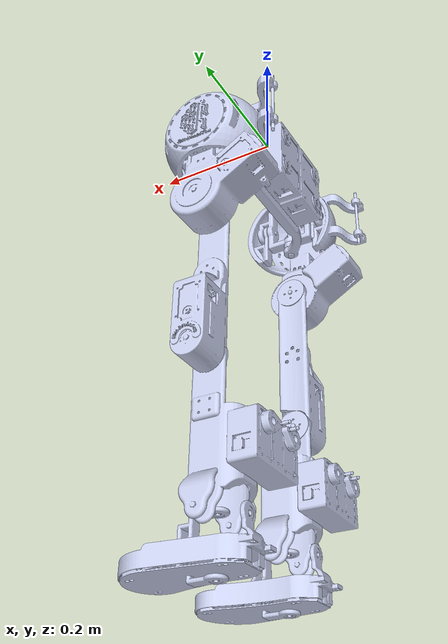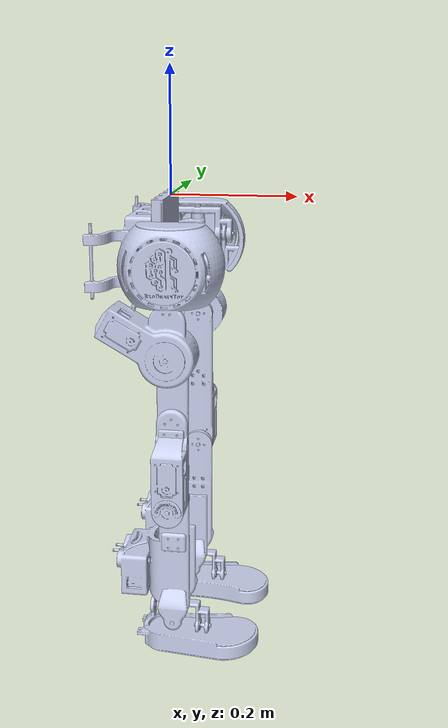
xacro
<?xml version="1.0"?>
<!-- Revolute-Revolute Manipulator -->
<robot name="thormang3" xmlns:xacro="http://www.ros.org/wiki/xacro">

  <!-- some parameters -->
  <xacro:property name="pi" value="3.141592654" />

  <!-- Import all Gazebo-customization elements, including Gazebo colors -->

  <!-- Import Rviz colors -->
  <xacro:include filename="$(find thormang3_description)/urdf/materials.xacro" />
  <xacro:include filename="$(find thormang3_description)/urdf/thormang3.transmissions.xacro" />
  <xacro:include filename="$(find thormang3_description)/urdf/thormang3.structure.leg.xacro" />
  <xacro:include filename="$(find thormang3_description)/urdf/thormang3.gazebo" />
  <!-- Used for fixing robot -->
  <!-- pelvis_link -->
<link
    name="pelvis_link">
    <inertial>
      <origin
        xyz="-0.0229570391634383 9.79841631490452E-06 -0.0791579286364339"
        rpy="0 0 0" />
      <mass
        value="0.876180506785054" />
      <inertia
        ixx="1.0"
        ixy="0.0"
        ixz="0.0"
        iyy="1.0"
        iyz="0.0"
        izz="1.0" />
    </inertial>
    <visual>
      <origin
        xyz="0 0 0"
        rpy="0 0 0" />
      <geometry>
        <mesh
          filename="package://exo_fri2/meshes/pelvis_link.STL" />
      </geometry>
      <material
        name="">
        <color
          rgba="0.792156862745098 0.819607843137255 0.933333333333333 1" />
      </material>
    </visual>
    <collision>
      <origin
        xyz="0 0 0"
        rpy="0 0 0" />
      <geometry>
        <mesh
          filename="package://exo_fri2/meshes/pelvis_link.STL" />
      </geometry>
    </collision>
  </link>

  <!-- imu joint -->
  <joint name="imu_fixed" type="fixed">
    <parent link="pelvis_link"/>
    <child link="imu_link"/>
    <origin xyz="0.03 0 0.0" rpy="0 0 ${pi}"/>
  </joint>

  <link name="imu_link">
  </link>
  <xacro:thormang3_l_leg parent="pelvis_link" />
  <xacro:thormang3_r_leg parent="pelvis_link" />
</robot>

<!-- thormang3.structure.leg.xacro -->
<robot xmlns:xacro="http://ros.org/wiki/xacro">

    <xacro:property name="pi" value="3.141592654" />

    <xacro:macro name="thormang3_l_leg" params="parent">

	<!-- left hip yaw joint -->
  <link
    name="l_leg_hip_y_link">
    <inertial>
      <origin
        xyz="0.000194866698194046 3.98997327107631E-05 0.00285846754175562"
        rpy="0 0 0" />
      <mass
        value="0.0865282088524624" />
      <inertia
        ixx="1.0"
        ixy="0.0"
        ixz="0.0"
        iyy="1.0"
        iyz="0.0"
        izz="1.0" />
    </inertial>
    <visual>
      <origin
        xyz="0 0 0"
        rpy="0 0 0" />
      <geometry>
        <mesh
          filename="package://exo_fri2/meshes/l_leg_hip_y_link.STL" />
      </geometry>
      <material
        name="">
        <color
          rgba="0.792156862745098 0.819607843137255 0.933333333333333 1" />
      </material>
    </visual>
    <collision>
      <origin
        xyz="0 0 0"
        rpy="0 0 0" />
      <geometry>
        <mesh
          filename="package://exo_fri2/meshes/l_leg_hip_y_link.STL" />
      </geometry>
    </collision>
  </link>
  <joint
    name="l_leg_hip_y"
    type="revolute">
    <origin
      xyz="0.023 0.125 -0.0813"
      rpy="0 0 0" />
    <parent
      link="pelvis_link" />
    <child
      link="l_leg_hip_y_link" />
    <axis
      xyz="0 0 1" />
    <limit
      velocity="6.5"
      effort="1000"
      lower="-2.826"
      upper="2.826" />
    <dynamics
      damping="0.1"
      friction="0.0" />
  </joint>
<xacro:insert_transmission name="l_leg_hip_y" />
  <link
    name="l_leg_hip_r_link">
    <inertial>
      <origin
        xyz="-0.0228672177413694 0.0267340296554695 -0.057861572875431"
        rpy="0 0 0" />
      <mass
        value="0.577322605082582" />
      <inertia
        ixx="1.0"
        ixy="0.0"
        ixz="0.0"
        iyy="1.0"
        iyz="0.0"
        izz="1.0" />
    </inertial>
    <visual>
      <origin
        xyz="0 0 0"
        rpy="0 0 0" />
      <geometry>
        <mesh
          filename="package://exo_fri2/meshes/l_leg_hip_r_link.STL" />
      </geometry>
      <material
        name="">
        <color
          rgba="0.792156862745098 0.819607843137255 0.933333333333333 1" />
      </material>
    </visual>
    <collision>
      <origin
        xyz="0 0 0"
        rpy="0 0 0" />
      <geometry>
        <mesh
          filename="package://exo_fri2/meshes/l_leg_hip_r_link.STL" />
      </geometry>
    </collision>
  </link>
  <joint
    name="l_leg_hip_r"
    type="revolute">
    <origin
      xyz="0 0 0"
      rpy="0 0 0" />
    <parent
      link="l_leg_hip_y_link" />
    <child
      link="l_leg_hip_r_link" />
    <axis
      xyz="1 0 0" />
    <limit
      velocity="6.5"
      effort="1000"
      lower="-2.826"
      upper="2.826" />
    <dynamics
      damping="0.1"
      friction="0.0" />
  </joint>
<xacro:insert_transmission name="l_leg_hip_r" />
  <link
    name="l_leg_hip_p_link">
    <inertial>
      <origin
        xyz="-0.000116198463840173 0.0284688740026196 -0.159183589997654"
        rpy="0 0 0" />
      <mass
        value="0.286678540994592" />
      <inertia
        ixx="1.0"
        ixy="0.0"
        ixz="0.0"
        iyy="1.0"
        iyz="0.0"
        izz="1.0" />
    </inertial>
    <visual>
      <origin
        xyz="0 0 0"
        rpy="0 0 0" />
      <geometry>
        <mesh
          filename="package://exo_fri2/meshes/l_leg_hip_p_link.STL" />
      </geometry>
      <material
        name="">
        <color
          rgba="0.792156862745098 0.819607843137255 0.933333333333333 1" />
      </material>
    </visual>
    <collision>
      <origin
        xyz="0 0 0"
        rpy="0 0 0" />
      <geometry>
        <mesh
          filename="package://exo_fri2/meshes/l_leg_hip_p_link.STL" />
      </geometry>
    </collision>
  </link>
  <joint
    name="l_leg_hip_p"
    type="revolute">
    <origin
      xyz="0.000765 -0.0097362 -0.14104"
      rpy="0 0 0" />
    <parent
      link="l_leg_hip_r_link" />
    <child
      link="l_leg_hip_p_link" />
    <axis
      xyz="0 1 0" />
    <limit
      velocity="6.5"
      effort="1000"
      lower="-2.826"
      upper="2.826" />
    <dynamics
      damping="0.1"
      friction="0.0" />
  </joint>
<xacro:insert_transmission name="l_leg_hip_p" />
  <link
    name="l_leg_kn_p_link">
    <inertial>
      <origin
        xyz="-0.0348628624504665 -0.0190683597425377 -0.127805036988548"
        rpy="0 0 0" />
      <mass
        value="0.501847265279983" />
      <inertia
        ixx="1.0"
        ixy="0.0"
        ixz="0.0"
        iyy="1.0"
        iyz="0.0"
        izz="1.0" />
    </inertial>
    <visual>
      <origin
        xyz="0 0 0"
        rpy="0 0 0" />
      <geometry>
        <mesh
          filename="package://exo_fri2/meshes/l_leg_kn_p_link.STL" />
      </geometry>
      <material
        name="">
        <color
          rgba="0.792156862745098 0.819607843137255 0.933333333333333 1" />
      </material>
    </visual>
    <collision>
      <origin
        xyz="0 0 0"
        rpy="0 0 0" />
      <geometry>
        <mesh
          filename="package://exo_fri2/meshes/l_leg_kn_p_link.STL" />
      </geometry>
    </collision>
  </link>
  <joint
    name="l_leg_kn_p"
    type="revolute">
    <origin
      xyz="0 -0.00025 -0.2451"
      rpy="0 0 0" />
    <parent
      link="l_leg_hip_p_link" />
    <child
      link="l_leg_kn_p_link" />
    <axis
      xyz="0 1 0" />
    <limit
      velocity="6.5"
      effort="1000"
      lower="-2.826"
      upper="2.826" />
    <dynamics
      damping="0.1"
      friction="0.0" />
  </joint>
<xacro:insert_transmission name="l_leg_kn_p" />
  <link
    name="l_leg_an_p_link">
    <inertial>
      <origin
        xyz="-0.0299520881007188 2.09226775349514E-08 3.0086740876456E-09"
        rpy="0 0 0" />
      <mass
        value="0.0325752774497041" />
      <inertia
        ixx="1.0"
        ixy="0.0"
        ixz="0.0"
        iyy="1.0"
        iyz="0.0"
        izz="1.0" />
    </inertial>
    <visual>
      <origin
        xyz="0 0 0"
        rpy="0 0 0" />
      <geometry>
        <mesh
          filename="package://exo_fri2/meshes/l_leg_an_p_link.STL" />
      </geometry>
      <material
        name="">
        <color
          rgba="0.792156862745098 0.819607843137255 0.933333333333333 1" />
      </material>
    </visual>
    <collision>
      <origin
        xyz="0 0 0"
        rpy="0 0 0" />
      <geometry>
        <mesh
          filename="package://exo_fri2/meshes/l_leg_an_p_link.STL" />
      </geometry>
    </collision>
  </link>
  <joint
    name="l_leg_an_p"
    type="revolute">
    <origin
      xyz="0 -0.022 -0.21"
      rpy="0 0 0" />
    <parent
      link="l_leg_kn_p_link" />
    <child
      link="l_leg_an_p_link" />
    <axis
      xyz="0 1 0" />
    <limit
      velocity="6.5"
      effort="1000"
      lower="-2.826"
      upper="2.826" />
    <dynamics
      damping="0.1"
      friction="0.0" />
  </joint>
<xacro:insert_transmission name="l_leg_an_p" />
  <link
    name="l_leg_an_r_link">
    <inertial>
      <origin
        xyz="0.0362143728561817 0.00041776190047349 -0.0460605874777161"
        rpy="0 0 0" />
      <mass
        value="0.20447635642258" />
      <inertia
        ixx="1.0"
        ixy="0.0"
        ixz="0.0"
        iyy="1.0"
        iyz="0.0"
        izz="1.0" />
    </inertial>
    <visual>
      <origin
        xyz="0 0 0"
        rpy="0 0 0" />
      <geometry>
        <mesh
          filename="package://exo_fri2/meshes/l_leg_an_r_link.STL" />
      </geometry>
      <material
        name="">
        <color
          rgba="0.792156862745098 0.819607843137255 0.933333333333333 1" />
      </material>
    </visual>
    <collision>
      <origin
        xyz="0 0 0"
        rpy="0 0 0" />
      <geometry>
        <mesh
          filename="package://exo_fri2/meshes/l_leg_an_r_link.STL" />
      </geometry>
    </collision>
  </link>
  <joint
    name="l_leg_an_r"
    type="revolute">
    <origin
      xyz="0 0 0"
      rpy="0 0 0" />
    <parent
      link="l_leg_an_p_link" />
    <child
      link="l_leg_an_r_link" />
    <axis
      xyz="1 0 0" />
    <limit
      velocity="6.5"
      effort="1000"
      lower="-2.826"
      upper="2.826" />
    <dynamics
      damping="0.1"
      friction="0.0" />
  </joint>
<xacro:insert_transmission name="l_leg_an_r" />

	<!-- left ft joint -->
        <joint name="l_leg_ft" type="revolute">
          <origin xyz="-0.057 0.0 -0.087" rpy="0 0 0"/>
          <parent link="l_leg_an_r_link"/>
          <child link="l_leg_foot_link"/>
		  <limit velocity="6.5" effort="1000" lower="0" upper="0" />
        </joint>

	<!-- left foot link -->
        <link name="l_leg_foot_link">
          <inertial>
      	    <origin xyz="0.000 0.009 -0.013" rpy="0 0 0"/>
      	    <mass value="1.689"/>
      	    <inertia ixx="1.0" ixy="0.0" ixz="0.0" iyy="1.0" iyz="0.0" izz="1.0" />
    	  </inertial>
        </link>

	<!-- left ft fixed joint -->
        <joint name="l_leg_ft_fixed" type="fixed">
          <origin xyz="0.0 0.0 0.0" rpy="${pi} 0 0"/>
          <parent link="l_leg_foot_link"/>
          <child link="l_foot_ft_link"/>
        </joint>

	<!-- left foot ft link -->
        <link name="l_foot_ft_link">
        </link>

    </xacro:macro>

    <xacro:macro name="thormang3_r_leg" params="parent">

	<!-- right hip yaw joint -->
       <link
    name="r_leg_hip_y_link">
    <inertial>
      <origin
        xyz="0.000194859448184315 -3.99012608066768E-05 0.00285850027010753"
        rpy="0 0 0" />
      <mass
        value="0.0865285731833129" />
      <inertia
        ixx="1.0"
        ixy="0.0"
        ixz="0.0"
        iyy="1.0"
        iyz="0.0"
        izz="1.0" />
    </inertial>
    <visual>
      <origin
        xyz="0 0 0"
        rpy="0 0 0" />
      <geometry>
        <mesh
          filename="package://exo_fri2/meshes/r_leg_hip_y_link.STL" />
      </geometry>
      <material
        name="">
        <color
          rgba="0.792156862745098 0.819607843137255 0.933333333333333 1" />
      </material>
    </visual>
    <collision>
      <origin
        xyz="0 0 0"
        rpy="0 0 0" />
      <geometry>
        <mesh
          filename="package://exo_fri2/meshes/r_leg_hip_y_link.STL" />
      </geometry>
    </collision>
  </link>
  <joint
    name="r_leg_hip_y"
    type="revolute">
    <origin
      xyz="0.023 -0.125 -0.0813"
      rpy="0 0 0" />
    <parent
      link="pelvis_link" />
    <child
      link="r_leg_hip_y_link" />
    <axis
      xyz="0 0 1" />
    <limit
      velocity="6.5"
      effort="1000"
      lower="-2.826"
      upper="2.826" />
    <dynamics
      damping="0.1"
      friction="0.0" />
  </joint>
<xacro:insert_transmission name="r_leg_hip_y" />
  <link
    name="r_leg_hip_r_link">
    <inertial>
      <origin
        xyz="-0.023877009103276 -0.0267341360094503 -0.0578620358278071"
        rpy="0 0 0" />
      <mass
        value="0.577327897793504" />
      <inertia
        ixx="1.0"
        ixy="0.0"
        ixz="0.0"
        iyy="1.0"
        iyz="0.0"
        izz="1.0" />
    </inertial>
    <visual>
      <origin
        xyz="0 0 0"
        rpy="0 0 0" />
      <geometry>
        <mesh
          filename="package://exo_fri2/meshes/r_leg_hip_r_link.STL" />
      </geometry>
      <material
        name="">
        <color
          rgba="0.792156862745098 0.819607843137255 0.933333333333333 1" />
      </material>
    </visual>
    <collision>
      <origin
        xyz="0 0 0"
        rpy="0 0 0" />
      <geometry>
        <mesh
          filename="package://exo_fri2/meshes/r_leg_hip_r_link.STL" />
      </geometry>
    </collision>
  </link>
  <joint
    name="r_leg_hip_r"
    type="revolute">
    <origin
      xyz="0 0 0"
      rpy="0 0 0" />
    <parent
      link="r_leg_hip_y_link" />
    <child
      link="r_leg_hip_r_link" />
    <axis
      xyz="1 0 0" />
    <limit
      velocity="6.5"
      effort="1000"
      lower="-2.826"
      upper="2.826" />
    <dynamics
      damping="0.1"
      friction="0.0" />
  </joint>
<xacro:insert_transmission name="r_leg_hip_r" />
  <link
    name="r_leg_hip_p_link">
    <inertial>
      <origin
        xyz="-0.000119608407726818 -0.0284075969398045 -0.159183646260211"
        rpy="0 0 0" />
      <mass
        value="0.286679006041324" />
      <inertia
        ixx="1.0"
        ixy="0.0"
        ixz="0.0"
        iyy="1.0"
        iyz="0.0"
        izz="1.0" />
    </inertial>
    <visual>
      <origin
        xyz="0 0 0"
        rpy="0 0 0" />
      <geometry>
        <mesh
          filename="package://exo_fri2/meshes/r_leg_hip_p_link.STL" />
      </geometry>
      <material
        name="">
        <color
          rgba="0.792156862745098 0.819607843137255 0.933333333333333 1" />
      </material>
    </visual>
    <collision>
      <origin
        xyz="0 0 0"
        rpy="0 0 0" />
      <geometry>
        <mesh
          filename="package://exo_fri2/meshes/r_leg_hip_p_link.STL" />
      </geometry>
    </collision>
  </link>
  <joint
    name="r_leg_hip_p"
    type="revolute">
    <origin
      xyz="-0.000235 0.0097362 -0.14104"
      rpy="0 0 0" />
    <parent
      link="r_leg_hip_r_link" />
    <child
      link="r_leg_hip_p_link" />
    <axis
      xyz="0 1 0" />
    <limit
      velocity="6.5"
      effort="1000"
      lower="-2.826"
      upper="2.826" />
    <dynamics
      damping="0.1"
      friction="0.0" />
  </joint>
<xacro:insert_transmission name="r_leg_hip_p" />
  <link
    name="r_leg_kn_p_link">
    <inertial>
      <origin
        xyz="-0.0348599742971025 0.0190722316896734 -0.127803416335954"
        rpy="0 0 0" />
      <mass
        value="0.501848142816981" />
      <inertia
        ixx="1.0"
        ixy="0.0"
        ixz="0.0"
        iyy="1.0"
        iyz="0.0"
        izz="1.0" />
    </inertial>
    <visual>
      <origin
        xyz="0 0 0"
        rpy="0 0 0" />
      <geometry>
        <mesh
          filename="package://exo_fri2/meshes/r_leg_kn_p_link.STL" />
      </geometry>
      <material
        name="">
        <color
          rgba="0.792156862745098 0.819607843137255 0.933333333333333 1" />
      </material>
    </visual>
    <collision>
      <origin
        xyz="0 0 0"
        rpy="0 0 0" />
      <geometry>
        <mesh
          filename="package://exo_fri2/meshes/r_leg_kn_p_link.STL" />
      </geometry>
    </collision>
  </link>
  <joint
    name="r_leg_kn_p"
    type="revolute">
    <origin
      xyz="0 0.00075 -0.2451"
      rpy="0 0 0" />
    <parent
      link="r_leg_hip_p_link" />
    <child
      link="r_leg_kn_p_link" />
    <axis
      xyz="0 1 0" />
    <limit
      velocity="6.5"
      effort="1000"
      lower="-2.826"
      upper="2.826" />
    <dynamics
      damping="0.1"
      friction="0.0" />
  </joint>
<xacro:insert_transmission name="r_leg_kn_p" />
  <link
    name="r_leg_an_p_link">
    <inertial>
      <origin
        xyz="-0.0299520881006903 2.09226773250498E-08 3.00867425417906E-09"
        rpy="0 0 0" />
      <mass
        value="0.0325752774497039" />
      <inertia
        ixx="1.0"
        ixy="0.0"
        ixz="0.0"
        iyy="1.0"
        iyz="0.0"
        izz="1.0" />
    </inertial>
    <visual>
      <origin
        xyz="0 0 0"
        rpy="0 0 0" />
      <geometry>
        <mesh
          filename="package://exo_fri2/meshes/r_leg_an_p_link.STL" />
      </geometry>
      <material
        name="">
        <color
          rgba="0.792156862745098 0.819607843137255 0.933333333333333 1" />
      </material>
    </visual>
    <collision>
      <origin
        xyz="0 0 0"
        rpy="0 0 0" />
      <geometry>
        <mesh
          filename="package://exo_fri2/meshes/r_leg_an_p_link.STL" />
      </geometry>
    </collision>
  </link>
  <joint
    name="r_leg_an_p"
    type="revolute">
    <origin
      xyz="0 0.022 -0.21"
      rpy="0 0 0" />
    <parent
      link="r_leg_kn_p_link" />
    <child
      link="r_leg_an_p_link" />
    <axis
      xyz="0 1 0" />
    <limit
      velocity="6.5"
      effort="1000"
      lower="-2.826"
      upper="2.826" />
    <dynamics
      damping="0.1"
      friction="0.0" />
  </joint>
<xacro:insert_transmission name="r_leg_an_p" />
  <link
    name="r_leg_an_r_link">
    <inertial>
      <origin
        xyz="0.0365974815210963 -0.00127278229934455 -0.0459051713323503"
        rpy="0 0 0" />
      <mass
        value="0.20447635642258" />
      <inertia
        ixx="1.0"
        ixy="0.0"
        ixz="0.0"
        iyy="1.0"
        iyz="0.0"
        izz="1.0" />
    </inertial>
    <visual>
      <origin
        xyz="0 0 0"
        rpy="0 0 0" />
      <geometry>
        <mesh
          filename="package://exo_fri2/meshes/r_leg_an_r_link.STL" />
      </geometry>
      <material
        name="">
        <color
          rgba="0.792156862745098 0.819607843137255 0.933333333333333 1" />
      </material>
    </visual>
    <collision>
      <origin
        xyz="0 0 0"
        rpy="0 0 0" />
      <geometry>
        <mesh
          filename="package://exo_fri2/meshes/r_leg_an_r_link.STL" />
      </geometry>
    </collision>
  </link>
  <joint
    name="r_leg_an_r"
    type="revolute">
    <origin
      xyz="0 0 0"
      rpy="0 0 0" />
    <parent
      link="r_leg_an_p_link" />
    <child
      link="r_leg_an_r_link" />
    <axis
      xyz="1 0 0" />
    <limit
      velocity="6.5"
      effort="1000"
      lower="-2.826"
      upper="2.826" />
    <dynamics
      damping="0.1"
      friction="0.0" />
  </joint>
<xacro:insert_transmission name="r_leg_an_r" />

	<!-- right ft joint -->
        <joint name="r_leg_ft" type="revolute">
          <origin xyz="-0.057 0.0 -0.087" rpy="0 0 0"/>
          <parent link="r_leg_an_r_link"/>
          <child link="r_leg_foot_link"/>
		  <limit velocity="6.5" effort="1000" lower="0" upper="0" />
        </joint>

	<!-- right foot link -->
        <link name="r_leg_foot_link">
          <inertial>
      	    <origin xyz="0.000 -0.009 -0.013" rpy="0 0 0"/>
      	    <mass value="1.689"/>
      	    <inertia ixx="1.0" ixy="0.0" ixz="0.0" iyy="1.0" iyz="0.0" izz="1.0" />
    	  </inertial>
        </link>

	<!-- right ft fixed joint -->
        <joint name="r_leg_ft_fixed" type="fixed">
          <origin xyz="0.0 0.0 0.0" rpy="${pi} 0 0"/>
          <parent link="r_leg_foot_link"/>
          <child link="r_foot_ft_link"/>
        </joint>

	<!-- right foot ft link -->
        <link name="r_foot_ft_link">
        </link>

    </xacro:macro>

</robot>
